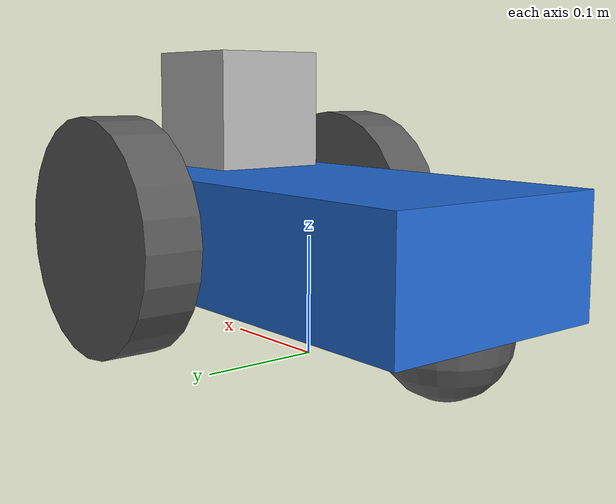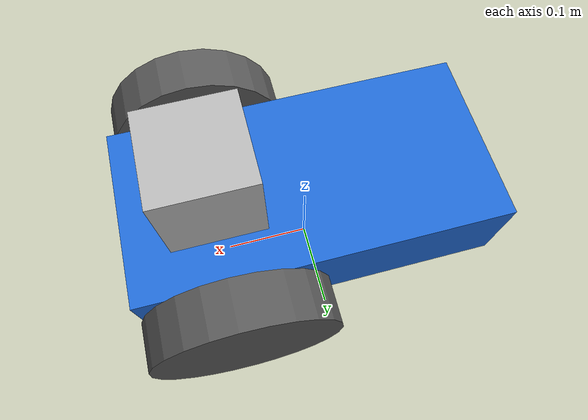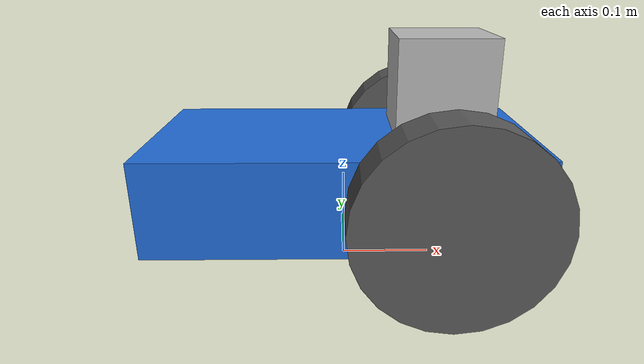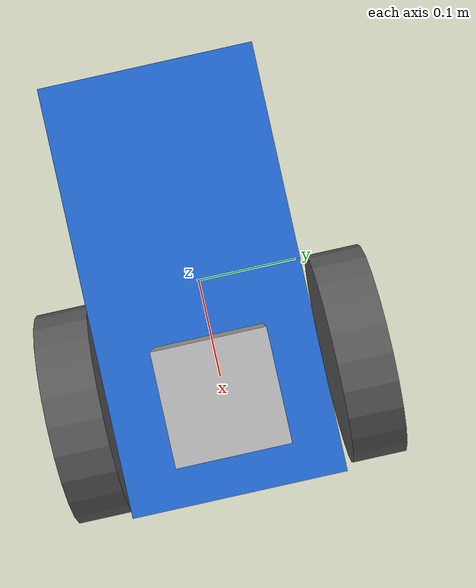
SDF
<?xml version='1.0'?>
<sdf version='1.7'>
  <model name='my_robot'>
    <link name='chassis'>
      <pose>-0.000366 -0.003645 0.1 0 -0 0</pose>
      <self_collide>0</self_collide>
      <inertial>
        <pose>0 0 0 0 -0 0</pose>
        <inertia>
          <ixx>1</ixx>
          <ixy>0</ixy>
          <ixz>0</ixz>
          <iyy>1</iyy>
          <iyz>0</iyz>
          <izz>1</izz>
        </inertia>
        <mass>1</mass>
      </inertial>
      <enable_wind>0</enable_wind>
      <kinematic>0</kinematic>
      <gravity>1</gravity>
      <visual name='caster_visual'>
        <pose>-0.15 0 -0.05 0 -0 0</pose>
        <geometry>
          <sphere>
            <radius>0.05</radius>
          </sphere>
        </geometry>
        <material>
          <shader type='pixel'>
            <normal_map>__default__</normal_map>
          </shader>
          <script>
            <name>ModelPreview_1::chassis::caster_visual_MATERIAL_</name>
            <uri>__default__</uri>
          </script>
          <ambient>0.35 0.35 0.35 1</ambient>
          <diffuse>0.35 0.35 0.35 1</diffuse>
          <specular>0 0 0 1</specular>
          <emissive>0 0 0 1</emissive>
        </material>
        <transparency>0</transparency>
        <cast_shadows>1</cast_shadows>
      </visual>
      <visual name='visual'>
        <geometry>
          <box>
            <size>0.4 0.2 0.1</size>
          </box>
        </geometry>
        <material>
          <shader type='pixel'>
            <normal_map>__default__</normal_map>
          </shader>
          <script>
            <name>ModelPreview_1::chassis::visual_MATERIAL_</name>
            <uri>__default__</uri>
          </script>
          <ambient>0.13 0.42 0.84 0</ambient>
          <diffuse>0.13 0.42 0.84 1</diffuse>
          <specular>0 0 0 1</specular>
          <emissive>0 0 0 1</emissive>
        </material>
        <pose>0 0 0 0 -0 0</pose>
        <transparency>0</transparency>
        <cast_shadows>1</cast_shadows>
      </visual>
      <collision name='caster_collision'>
        <laser_retro>0</laser_retro>
        <max_contacts>10</max_contacts>
        <pose>-0.15 0 -0.05 0 -0 0</pose>
        <geometry>
          <sphere>
            <radius>0.05</radius>
          </sphere>
        </geometry>
        <surface>
          <friction>
            <ode>
              <mu>0</mu>
              <mu2>0</mu2>
              <fdir1>0 0 0</fdir1>
              <slip1>1</slip1>
              <slip2>1</slip2>
            </ode>
            <torsional>
              <coefficient>1</coefficient>
              <patch_radius>0</patch_radius>
              <surface_radius>0</surface_radius>
              <use_patch_radius>1</use_patch_radius>
              <ode>
                <slip>0</slip>
              </ode>
            </torsional>
          </friction>
          <bounce>
            <restitution_coefficient>0</restitution_coefficient>
            <threshold>1e+06</threshold>
          </bounce>
          <contact>
            <collide_without_contact>0</collide_without_contact>
            <collide_without_contact_bitmask>1</collide_without_contact_bitmask>
            <collide_bitmask>1</collide_bitmask>
            <ode>
              <soft_cfm>0</soft_cfm>
              <soft_erp>0.2</soft_erp>
              <kp>1e+13</kp>
              <kd>1</kd>
              <max_vel>0.01</max_vel>
              <min_depth>0</min_depth>
            </ode>
            <bullet>
              <split_impulse>1</split_impulse>
              <split_impulse_penetration_threshold>-0.01</split_impulse_penetration_threshold>
              <soft_cfm>0</soft_cfm>
              <soft_erp>0.2</soft_erp>
              <kp>1e+13</kp>
              <kd>1</kd>
            </bullet>
          </contact>
        </surface>
      </collision>
      <collision name='collision'>
        <laser_retro>0</laser_retro>
        <max_contacts>10</max_contacts>
        <pose>0 0 0 0 -0 0</pose>
        <geometry>
          <box>
            <size>0.4 0.2 0.1</size>
          </box>
        </geometry>
        <surface>
          <friction>
            <ode>
              <mu>1</mu>
              <mu2>1</mu2>
              <fdir1>0 0 0</fdir1>
              <slip1>0</slip1>
              <slip2>0</slip2>
            </ode>
            <torsional>
              <coefficient>1</coefficient>
              <patch_radius>0</patch_radius>
              <surface_radius>0</surface_radius>
              <use_patch_radius>1</use_patch_radius>
              <ode>
                <slip>0</slip>
              </ode>
            </torsional>
          </friction>
          <bounce>
            <restitution_coefficient>0</restitution_coefficient>
            <threshold>1e+06</threshold>
          </bounce>
          <contact>
            <collide_without_contact>0</collide_without_contact>
            <collide_without_contact_bitmask>1</collide_without_contact_bitmask>
            <collide_bitmask>1</collide_bitmask>
            <ode>
              <soft_cfm>0</soft_cfm>
              <soft_erp>0.2</soft_erp>
              <kp>1e+13</kp>
              <kd>1</kd>
              <max_vel>0.01</max_vel>
              <min_depth>0</min_depth>
            </ode>
            <bullet>
              <split_impulse>1</split_impulse>
              <split_impulse_penetration_threshold>-0.01</split_impulse_penetration_threshold>
              <soft_cfm>0</soft_cfm>
              <soft_erp>0.2</soft_erp>
              <kp>1e+13</kp>
              <kd>1</kd>
            </bullet>
          </contact>
        </surface>
      </collision>
    </link>
    <link name='left_wheel'>
      <pose>0.1 0.13 0.1 0.002948 1.5707 1.57365</pose>
      <self_collide>0</self_collide>
      <inertial>
        <pose>0 0 0 0 -0 0</pose>
        <inertia>
          <ixx>1</ixx>
          <ixy>0</ixy>
          <ixz>0</ixz>
          <iyy>1</iyy>
          <iyz>0</iyz>
          <izz>1</izz>
        </inertia>
        <mass>1</mass>
      </inertial>
      <enable_wind>0</enable_wind>
      <kinematic>0</kinematic>
      <gravity>1</gravity>
      <visual name='visual'>
        <geometry>
          <cylinder>
            <radius>0.1</radius>
            <length>0.05</length>
          </cylinder>
        </geometry>
        <material>
          <shader type='pixel'>
            <normal_map>__default__</normal_map>
          </shader>
          <script>
            <name>ModelPreview_1::left_wheel::visual_MATERIAL_</name>
            <uri>__default__</uri>
          </script>
          <ambient>0.35 0.35 0.35 1</ambient>
          <diffuse>0.35 0.35 0.35 1</diffuse>
          <specular>0 0 0 1</specular>
          <emissive>0 0 0 1</emissive>
        </material>
        <pose>0 0 0 0 -0 0</pose>
        <transparency>0</transparency>
        <cast_shadows>1</cast_shadows>
      </visual>
      <collision name='collision'>
        <laser_retro>0</laser_retro>
        <max_contacts>10</max_contacts>
        <pose>0 0 0 0 -0 0</pose>
        <geometry>
          <cylinder>
            <radius>0.1</radius>
            <length>0.05</length>
          </cylinder>
        </geometry>
        <surface>
          <friction>
            <ode>
              <mu>1</mu>
              <mu2>1</mu2>
              <fdir1>0 0 0</fdir1>
              <slip1>0</slip1>
              <slip2>0</slip2>
            </ode>
            <torsional>
              <coefficient>1</coefficient>
              <patch_radius>0</patch_radius>
              <surface_radius>0</surface_radius>
              <use_patch_radius>1</use_patch_radius>
              <ode>
                <slip>0</slip>
              </ode>
            </torsional>
          </friction>
          <bounce>
            <restitution_coefficient>0</restitution_coefficient>
            <threshold>1e+06</threshold>
          </bounce>
          <contact>
            <collide_without_contact>0</collide_without_contact>
            <collide_without_contact_bitmask>1</collide_without_contact_bitmask>
            <collide_bitmask>1</collide_bitmask>
            <ode>
              <soft_cfm>0</soft_cfm>
              <soft_erp>0.2</soft_erp>
              <kp>1e+13</kp>
              <kd>1</kd>
              <max_vel>0.01</max_vel>
              <min_depth>0</min_depth>
            </ode>
            <bullet>
              <split_impulse>1</split_impulse>
              <split_impulse_penetration_threshold>-0.01</split_impulse_penetration_threshold>
              <soft_cfm>0</soft_cfm>
              <soft_erp>0.2</soft_erp>
              <kp>1e+13</kp>
              <kd>1</kd>
            </bullet>
          </contact>
        </surface>
      </collision>
    </link>
    <link name='right_wheel'>
      <pose>0.1 -0.13 0.1 0.002948 1.5707 1.57365</pose>
      <self_collide>0</self_collide>
      <inertial>
        <pose>0 0 0 0 -0 0</pose>
        <inertia>
          <ixx>1</ixx>
          <ixy>0</ixy>
          <ixz>0</ixz>
          <iyy>1</iyy>
          <iyz>0</iyz>
          <izz>1</izz>
        </inertia>
        <mass>1</mass>
      </inertial>
      <enable_wind>0</enable_wind>
      <kinematic>0</kinematic>
      <gravity>1</gravity>
      <visual name='visual'>
        <geometry>
          <cylinder>
            <radius>0.1</radius>
            <length>0.05</length>
          </cylinder>
        </geometry>
        <material>
          <shader type='pixel'>
            <normal_map>__default__</normal_map>
          </shader>
          <script>
            <name>ModelPreview_1::right_wheel::visual_MATERIAL_</name>
            <uri>__default__</uri>
          </script>
          <ambient>0.35 0.35 0.35 0</ambient>
          <diffuse>0.35 0.35 0.35 1</diffuse>
          <specular>0 0 0 1</specular>
          <emissive>0 0 0 1</emissive>
        </material>
        <pose>0 0 0 0 -0 0</pose>
        <transparency>0</transparency>
        <cast_shadows>1</cast_shadows>
      </visual>
      <collision name='collision'>
        <laser_retro>0</laser_retro>
        <max_contacts>10</max_contacts>
        <pose>0 0 0 0 -0 0</pose>
        <geometry>
          <cylinder>
            <radius>0.1</radius>
            <length>0.05</length>
          </cylinder>
        </geometry>
        <surface>
          <friction>
            <ode>
              <mu>1</mu>
              <mu2>1</mu2>
              <fdir1>0 0 0</fdir1>
              <slip1>0</slip1>
              <slip2>0</slip2>
            </ode>
            <torsional>
              <coefficient>1</coefficient>
              <patch_radius>0</patch_radius>
              <surface_radius>0</surface_radius>
              <use_patch_radius>1</use_patch_radius>
              <ode>
                <slip>0</slip>
              </ode>
            </torsional>
          </friction>
          <bounce>
            <restitution_coefficient>0</restitution_coefficient>
            <threshold>1e+06</threshold>
          </bounce>
          <contact>
            <collide_without_contact>0</collide_without_contact>
            <collide_without_contact_bitmask>1</collide_without_contact_bitmask>
            <collide_bitmask>1</collide_bitmask>
            <ode>
              <soft_cfm>0</soft_cfm>
              <soft_erp>0.2</soft_erp>
              <kp>1e+13</kp>
              <kd>1</kd>
              <max_vel>0.01</max_vel>
              <min_depth>0</min_depth>
            </ode>
            <bullet>
              <split_impulse>1</split_impulse>
              <split_impulse_penetration_threshold>-0.01</split_impulse_penetration_threshold>
              <soft_cfm>0</soft_cfm>
              <soft_erp>0.2</soft_erp>
              <kp>1e+13</kp>
              <kd>1</kd>
            </bullet>
          </contact>
        </surface>
      </collision>
    </link>
    <model name='depth_camera'>
      <link name='link'>
        <pose>0 0 0.05 0 -0 0</pose>
        <inertial>
          <mass>0.1</mass>
          <inertia>
            <ixx>0.000166667</ixx>
            <iyy>0.000166667</iyy>
            <izz>0.000166667</izz>
            <ixy>0</ixy>
            <ixz>0</ixz>
            <iyz>0</iyz>
          </inertia>
          <pose>0 0 0 0 -0 0</pose>
        </inertial>
        <collision name='collision'>
          <geometry>
            <box>
              <size>0.1 0.1 0.1</size>
            </box>
          </geometry>
          <max_contacts>10</max_contacts>
          <surface>
            <contact>
              <ode/>
            </contact>
            <bounce/>
            <friction>
              <torsional>
                <ode/>
              </torsional>
              <ode/>
            </friction>
          </surface>
        </collision>
        <visual name='visual'>
          <geometry>
            <box>
              <size>0.1 0.1 0.1</size>
            </box>
          </geometry>
        </visual>
        <sensor name='camera' type='depth'>
          <camera>
            <horizontal_fov>1.047</horizontal_fov>
            <image>
              <width>320</width>
              <height>240</height>
            </image>
            <clip>
              <near>0.1</near>
              <far>100</far>
            </clip>
          </camera>
          <always_on>1</always_on>
          <update_rate>30</update_rate>
          <visualize>1</visualize>
        </sensor>
        <self_collide>0</self_collide>
        <enable_wind>0</enable_wind>
        <kinematic>0</kinematic>
      </link>
      <pose>0.101739 0.000313 0.154061 0 -0 0</pose>
    </model>
    <joint name='chassis_JOINT_0' type='fixed'>
      <parent>chassis</parent>
      <child>depth_camera::link</child>
      <pose>0 0 0 0 -0 0</pose>
      <physics>
        <ode>
          <limit>
            <cfm>0</cfm>
            <erp>0.2</erp>
          </limit>
          <suspension>
            <cfm>0</cfm>
            <erp>0.2</erp>
          </suspension>
        </ode>
      </physics>
    </joint>
    <joint name='left_wheel_hinge' type='revolute'>
      <parent>chassis</parent>
      <child>left_wheel</child>
      <pose>0 0 -0.03 0 -0 0</pose>
      <axis>
        <xyz>9.6e-05 9.6e-05 1</xyz>
        <limit>
          <lower>-1e+16</lower>
          <upper>1e+16</upper>
          <effort>-1</effort>
          <velocity>-1</velocity>
        </limit>
        <dynamics>
          <spring_reference>0</spring_reference>
          <spring_stiffness>0</spring_stiffness>
          <damping>0</damping>
          <friction>0</friction>
        </dynamics>
      </axis>
      <physics>
        <ode>
          <limit>
            <cfm>0</cfm>
            <erp>0.2</erp>
          </limit>
          <suspension>
            <cfm>0</cfm>
            <erp>0.2</erp>
          </suspension>
        </ode>
      </physics>
    </joint>
    <joint name='right_wheel_hinge' type='revolute'>
      <parent>chassis</parent>
      <child>right_wheel</child>
      <pose>0 0 0.03 0 -0 0</pose>
      <axis>
        <xyz>9.6e-05 9.6e-05 1</xyz>
        <limit>
          <lower>-1e+16</lower>
          <upper>1e+16</upper>
          <effort>-1</effort>
          <velocity>-1</velocity>
        </limit>
        <dynamics>
          <spring_reference>0</spring_reference>
          <spring_stiffness>0</spring_stiffness>
          <damping>0</damping>
          <friction>0</friction>
        </dynamics>
      </axis>
      <physics>
        <ode>
          <limit>
            <cfm>0</cfm>
            <erp>0.2</erp>
          </limit>
          <suspension>
            <cfm>0</cfm>
            <erp>0.2</erp>
          </suspension>
        </ode>
      </physics>
    </joint>
    <static>0</static>
    <allow_auto_disable>1</allow_auto_disable>
    <plugin name='follower' filename='libFollowerPlugin.so'/>
  </model>
</sdf>
